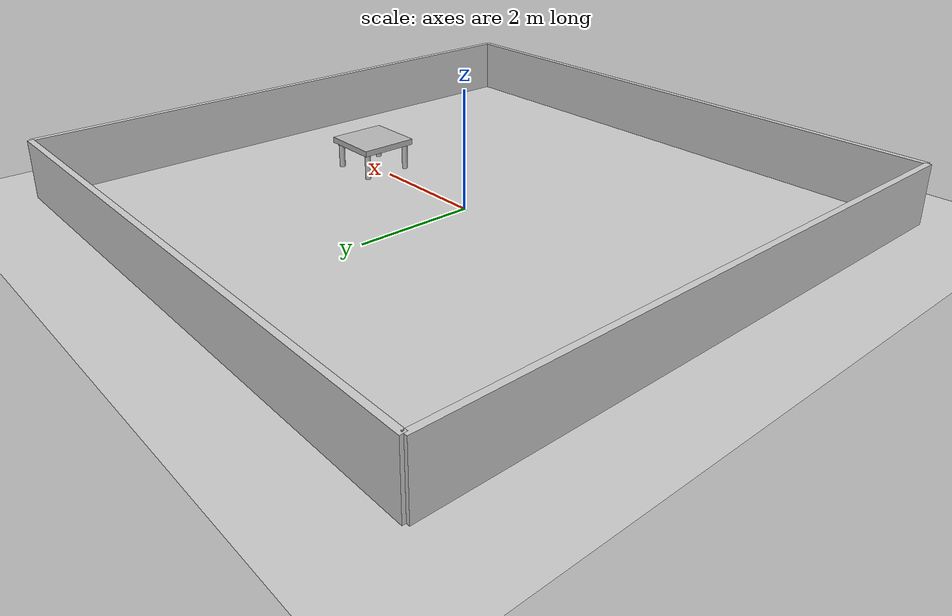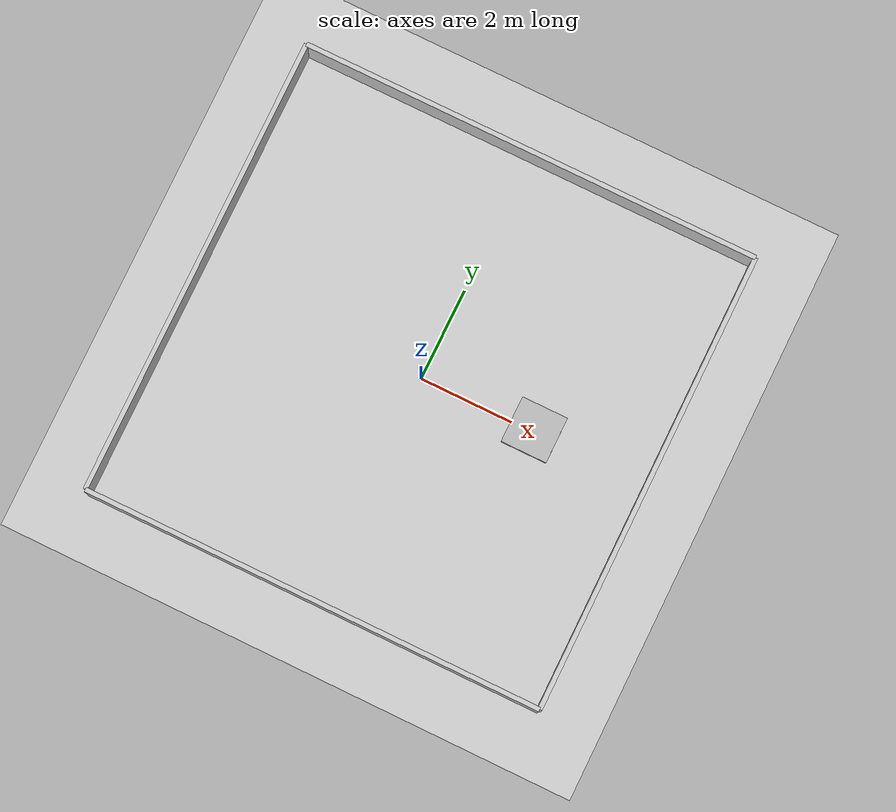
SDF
<sdf version="1.7">
 <world name="room_world">
  <gravity>0 0 -9.8</gravity>
  <include><uri>model://world/models/floor/ground_plane</uri></include>
  <light name="sun" type="directional">
   <pose>0 0 10 0 0 0</pose>
   <diffuse>1 1 1 1</diffuse>
   <specular>0.1 0.1 0.1 1</specular>
   <direction>-0.5 0.5 -1</direction>
  </light>
  <include>
   <uri>model://world/models/building//wall</uri>
   <name>wall_front</name>
   <pose>0 5 0.5 0 0 0</pose>
  </include>
  <include>
   <uri>model://world/models/building/wall</uri>
   <name>wall_back</name>
   <pose>0 -5 0.5 0 0 0</pose>
  </include>
  <include>
   <uri>model://world/models/building/wall</uri>
   <name>wall_left</name>
   <pose>-5 0 0.5 0 0 1.5708</pose>
  </include>
  <include>
   <uri>model://world/models/building/wall</uri>
   <name>wall_right</name>
   <pose>5 0 0.5 0 0 1.5708</pose>
  </include>
  <include><uri>model://world/models/static_objects/table</uri><pose>2.5 0.0 0.5 0 0 0</pose></include>
  <physics type="ode">
   <max_step_size>0.001</max_step_size>
   <real_time_update_rate>1000</real_time_update_rate>
  </physics>
 </world>
</sdf>

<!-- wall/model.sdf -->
<sdf version="1.7">
  <model name="wall">
    <static>true</static>
    <link name="wall_body">
      <collision name="collision_wall">
        <geometry>
          <box>
            <size>10 0.1 1</size> <!-- Length, Thickness, Height -->
          </box>
        </geometry>
      </collision>
      <visual name="visual_wall">
        <geometry>
          <box>
            <size>10 0.1 1</size>
          </box>
        </geometry>
        <material>
          <ambient>0.8 0.8 0.8 1</ambient>
        </material>
      </visual>
    </link>
  </model>
</sdf>

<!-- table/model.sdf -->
<sdf version="1.7">
  <model name="table">
    <pose>0 0 0.5 0 0 0</pose> <!-- Position of the table -->

    <!-- Tabletop -->
    <link name="table_body">
      <collision name="collision_table_body">
        <geometry>
          <box>
            <size>1.0 1.0 0.1</size> <!-- Tabletop dimensions -->
          </box>
        </geometry>
      </collision>
      <visual name="visual_table_body">
        <geometry>
          <box>
            <size>1.0 1.0 0.1</size>
          </box>
        </geometry>
      </visual>
    </link>

    <!-- Table legs -->
    <link name="leg_1">
      <pose>-0.4 -0.4 -0.25 0 0 0</pose>
      <collision name="collision_leg_1">
        <geometry>
          <cylinder>
            <radius>0.05</radius>
            <length>0.5</length>
          </cylinder>
        </geometry>
      </collision>
      <visual name="visual_leg_1">
        <geometry>
          <cylinder>
            <radius>0.05</radius>
            <length>0.5</length>
          </cylinder>
        </geometry>
      </visual>
    </link>

    <link name="leg_2">
      <pose>0.4 -0.4 -0.25 0 0 0</pose>
      <collision name="collision_leg_2">
        <geometry>
          <cylinder>
            <radius>0.05</radius>
            <length>0.5</length>
          </cylinder>
        </geometry>
      </collision>
      <visual name="visual_leg_2">
        <geometry>
          <cylinder>
            <radius>0.05</radius>
            <length>0.5</length>
          </cylinder>
        </geometry>
      </visual>
    </link>

    <link name="leg_3">
      <pose>-0.4 0.4 -0.25 0 0 0</pose>
      <collision name="collision_leg_3">
        <geometry>
          <cylinder>
            <radius>0.05</radius>
            <length>0.5</length>
          </cylinder>
        </geometry>
      </collision>
      <visual name="visual_leg_3">
        <geometry>
          <cylinder>
            <radius>0.05</radius>
            <length>0.5</length>
          </cylinder>
        </geometry>
      </visual>
    </link>

    <link name="leg_4">
      <pose>0.4 0.4 -0.25 0 0 0</pose>
      <collision name="collision_leg_4">
        <geometry>
          <cylinder>
            <radius>0.05</radius>
            <length>0.5</length>
          </cylinder>
        </geometry>
      </collision>
      <visual name="visual_leg_4">
        <geometry>
          <cylinder>
            <radius>0.05</radius>
            <length>0.5</length>
          </cylinder>
        </geometry>
      </visual>
    </link>

    <!-- Joints to connect legs to tabletop -->
    <joint name="joint_leg_1" type="fixed">
      <parent>table_body</parent>
      <child>leg_1</child>
    </joint>

    <joint name="joint_leg_2" type="fixed">
      <parent>table_body</parent>
      <child>leg_2</child>
    </joint>

    <joint name="joint_leg_3" type="fixed">
      <parent>table_body</parent>
      <child>leg_3</child>
    </joint>

    <joint name="joint_leg_4" type="fixed">
      <parent>table_body</parent>
      <child>leg_4</child>
    </joint>
  </model>
</sdf>
